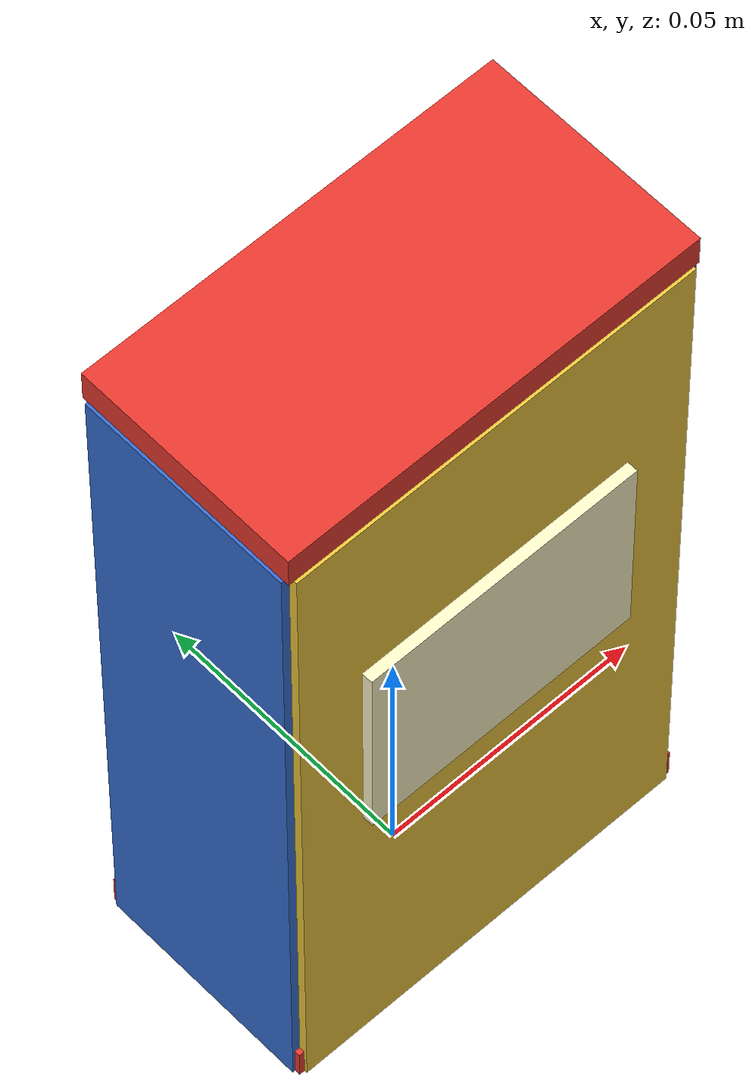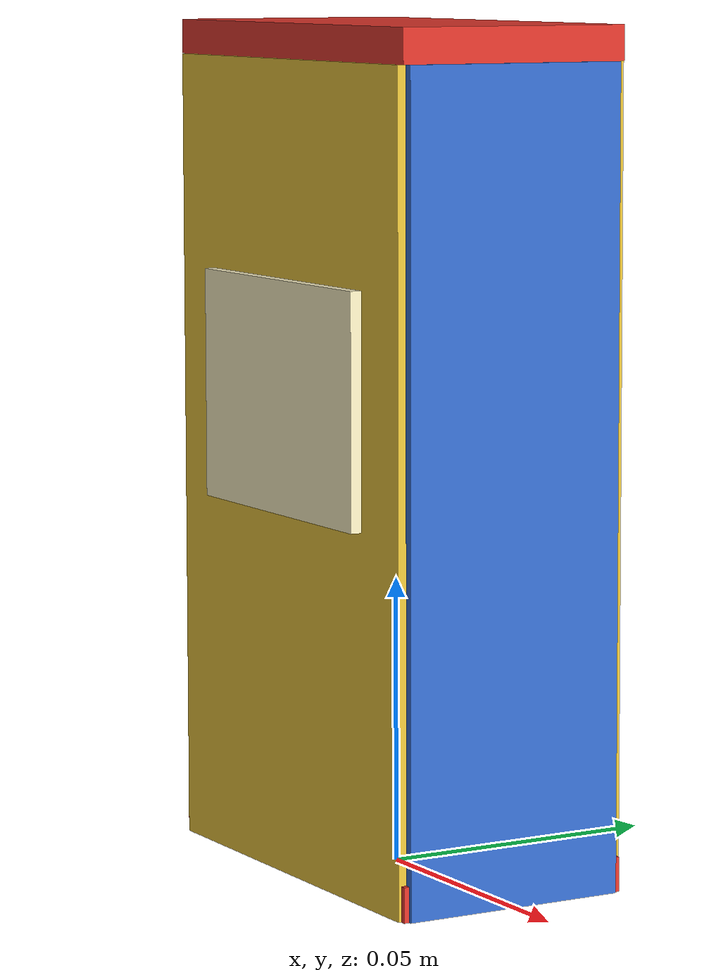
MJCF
<mujoco model="custom_cereal_box">
  <asset>
    <material name="cereal_front" rgba="0.93 0.78 0.23 1"/>
    <material name="cereal_side" rgba="0.21 0.43 0.82 1"/>
    <material name="cereal_top" rgba="0.90 0.22 0.18 1"/>
    <material name="cereal_label" rgba="1.00 0.96 0.78 1"/>
  </asset>
  <worldbody>
    <body>
      <body name="object">
        <geom name="box_col" type="box" size="0.038 0.020 0.070" pos="0 0 0.070" rgba="0 0 0 0" density="120" group="0" contype="1" conaffinity="1"/>
        <geom name="front_panel" type="box" size="0.038 0.001 0.070" pos="0 -0.0205 0.070" material="cereal_front" group="1" contype="0" conaffinity="0"/>
        <geom name="back_panel" type="box" size="0.038 0.001 0.070" pos="0 0.0205 0.070" material="cereal_front" group="1" contype="0" conaffinity="0"/>
        <geom name="left_panel" type="box" size="0.001 0.020 0.070" pos="-0.0385 0 0.070" material="cereal_side" group="1" contype="0" conaffinity="0"/>
        <geom name="right_panel" type="box" size="0.001 0.020 0.070" pos="0.0385 0 0.070" material="cereal_side" group="1" contype="0" conaffinity="0"/>
        <geom name="top_panel" type="box" size="0.039 0.021 0.003" pos="0 0 0.143" material="cereal_top" group="1" contype="0" conaffinity="0"/>
        <geom name="bottom_panel" type="box" size="0.039 0.021 0.003" pos="0 0 0.003" material="cereal_top" group="1" contype="0" conaffinity="0"/>
        <geom name="front_label" type="box" size="0.026 0.0015 0.020" pos="0 -0.022 0.083" material="cereal_label" group="1" contype="0" conaffinity="0"/>
        <geom name="reg_bbox" type="box" size="0.043 0.025 0.074" pos="0 0 0.074" rgba="0 0 0 0" group="3" contype="0" conaffinity="0"/>
      </body>
      <site name="bottom_site" pos="0 0 0" size="0.005" rgba="0 0 0 0"/>
      <site name="top_site" pos="0 0 0.148" size="0.005" rgba="0 0 0 0"/>
      <site name="horizontal_radius_site" pos="0.058 0 0.074" size="0.005" rgba="0 0 0 0"/>
    </body>
  </worldbody>
</mujoco>
